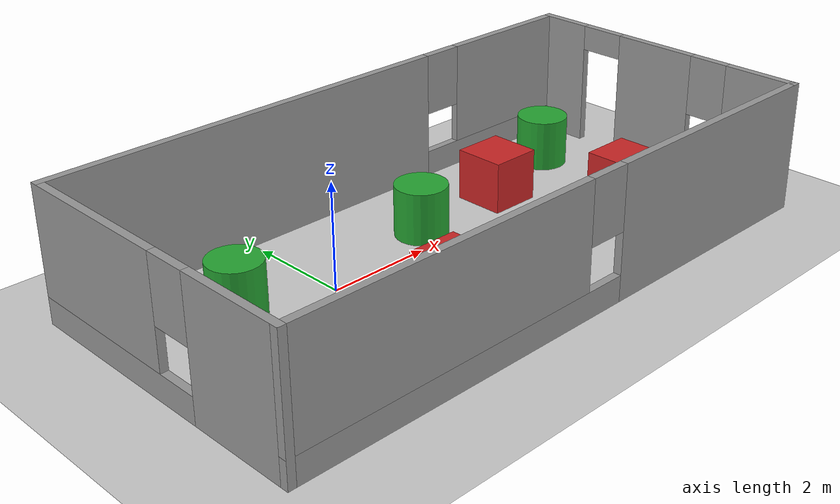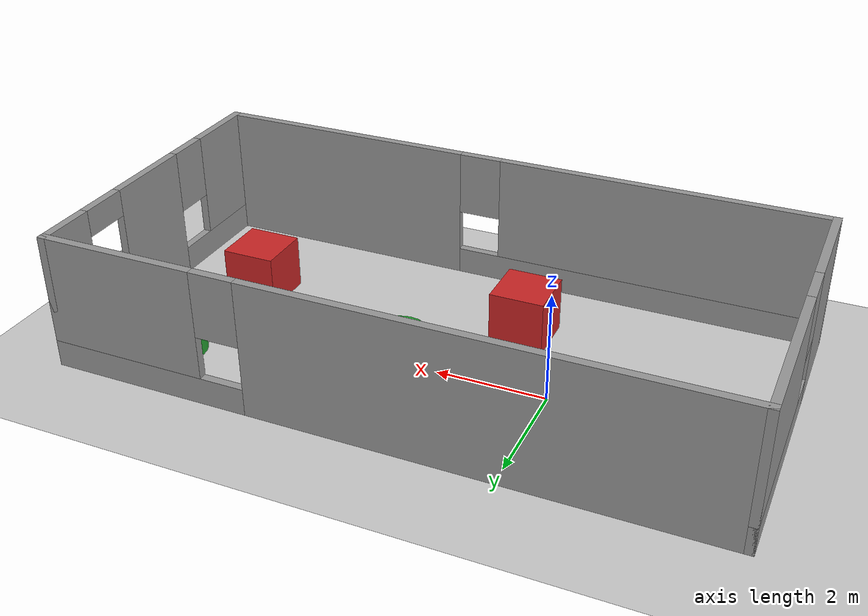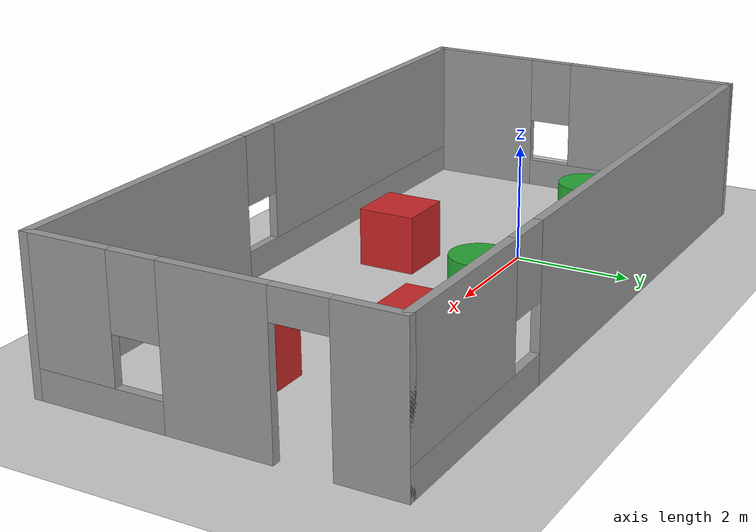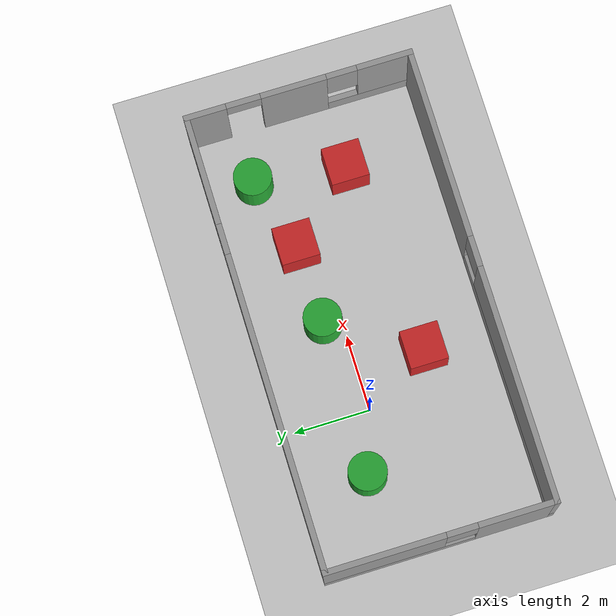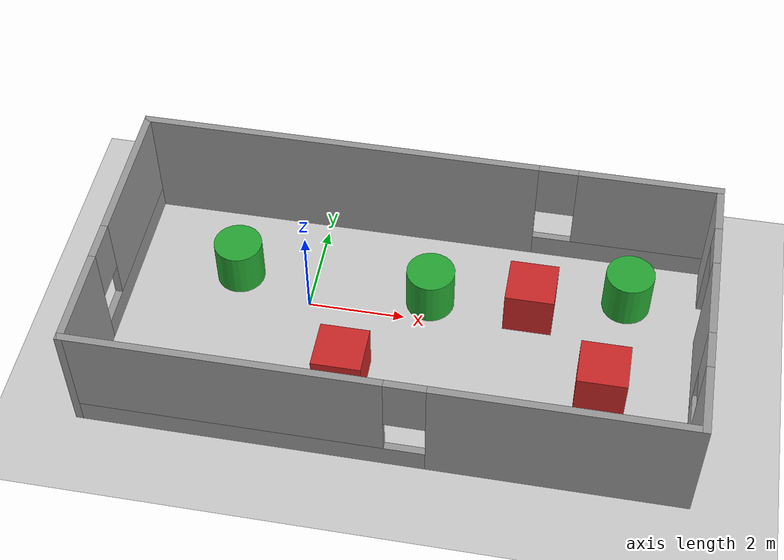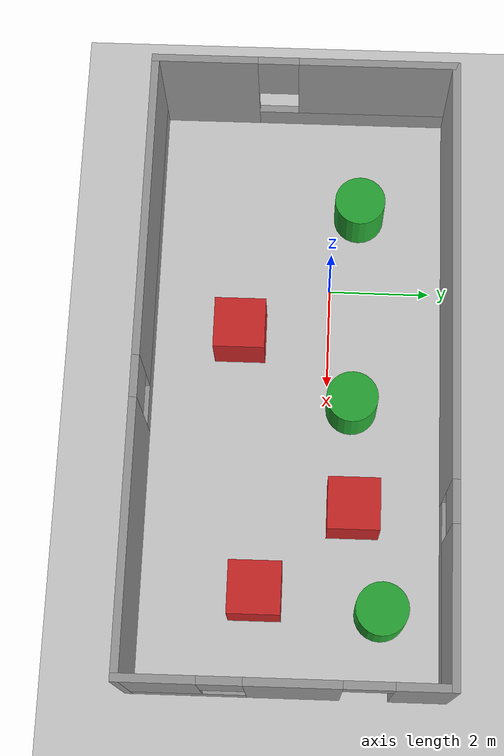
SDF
<sdf version="1.7">
 <world name="__default__">
  <model name="ground_plane">
   <static>1</static>
   <link name="link">
    <collision name="collision">
     <geometry><plane><normal>0 0 1</normal><size>100 100</size></plane></geometry>
     <surface><friction><ode><mu>100</mu><mu2>50</mu2></ode></friction></surface>
    </collision>
    <visual name="visual">
     <cast_shadows>0</cast_shadows>
     <geometry><plane><normal>0 0 1</normal><size>100 100</size></plane></geometry>
     <material>
      <script><uri>file://media/materials/scripts/gazebo.material</uri><name>Gazebo/Grey</name></script>
     </material>
    </visual>
   </link>
  </model>
  <gravity>0 0 -9.8</gravity>
  <magnetic_field>6e-06 2.3e-05 -4.2e-05</magnetic_field>
  <atmosphere type="adiabatic"/>
  <physics type="ode">
   <max_step_size>0.001</max_step_size>
   <real_time_factor>1</real_time_factor>
   <real_time_update_rate>1000</real_time_update_rate>
  </physics>
  <scene><ambient>0.4 0.4 0.4 1</ambient><background>0.7 0.7 0.7 1</background><shadows>1</shadows></scene>
  <audio><device>default</device></audio>
  <spherical_coordinates>
   <surface_model>EARTH_WGS84</surface_model>
   <latitude_deg>0</latitude_deg>
   <longitude_deg>0</longitude_deg>
   <elevation>0</elevation>
   <heading_deg>0</heading_deg>
  </spherical_coordinates>
  <model name="demo">
   <pose>2.095 -0.605 0 0 -0 0</pose>
   <link name="Wall_1">
    <pose>-5.925 0 0 0 -0 1.5708</pose>
    <visual name="Wall_1_Visual_0">
     <pose>-1.9675 0 1.25 0 -0 0</pose>
     <geometry><box><size>2.065 0.15 2.5</size></box></geometry>
     <material>
      <script><uri>file://media/materials/scripts/gazebo.material</uri><name>Gazebo/Grey</name></script>
      <ambient>1 1 1 1</ambient>
     </material>
     <meta><layer>0</layer></meta>
    </visual>
    <collision name="Wall_1_Collision_0">
     <geometry><box><size>2.065 0.15 2.5</size></box></geometry>
     <pose>-1.9675 0 1.25 0 -0 0</pose>
    </collision>
    <visual name="Wall_1_Visual_1">
     <pose>1.0325 0 0.25 0 -0 0</pose>
     <geometry><box><size>3.935 0.15 0.5</size></box></geometry>
     <material>
      <script><uri>file://media/materials/scripts/gazebo.material</uri><name>Gazebo/Grey</name></script>
      <ambient>1 1 1 1</ambient>
     </material>
     <meta><layer>0</layer></meta>
    </visual>
    <collision name="Wall_1_Collision_1">
     <geometry><box><size>3.935 0.15 0.5</size></box></geometry>
     <pose>1.0325 0 0.25 0 -0 0</pose>
    </collision>
    <visual name="Wall_1_Visual_2">
     <pose>1.4325 0 1.5 0 -0 0</pose>
     <geometry><box><size>3.135 0.15 2</size></box></geometry>
     <material>
      <script><uri>file://media/materials/scripts/gazebo.material</uri><name>Gazebo/Grey</name></script>
      <ambient>1 1 1 1</ambient>
     </material>
     <meta><layer>0</layer></meta>
    </visual>
    <collision name="Wall_1_Collision_2">
     <geometry><box><size>3.135 0.15 2</size></box></geometry>
     <pose>1.4325 0 1.5 0 -0 0</pose>
    </collision>
    <visual name="Wall_1_Visual_3">
     <pose>-0.535 0 1.9 0 -0 0</pose>
     <geometry><box><size>0.8 0.15 1.2</size></box></geometry>
     <material>
      <script><uri>file://media/materials/scripts/gazebo.material</uri><name>Gazebo/Grey</name></script>
      <ambient>1 1 1 1</ambient>
     </material>
     <meta><layer>0</layer></meta>
    </visual>
    <collision name="Wall_1_Collision_3">
     <geometry><box><size>0.8 0.15 1.2</size></box></geometry>
     <pose>-0.535 0 1.9 0 -0 0</pose>
    </collision>
   </link>
   <link name="Wall_2">
    <pose>-0 2.925 0 0 -0 0</pose>
    <visual name="Wall_2_Visual_0">
     <pose>-1.8625 0 1.25 0 -0 0</pose>
     <geometry><box><size>8.275 0.15 2.5</size></box></geometry>
     <material>
      <script><uri>file://media/materials/scripts/gazebo.material</uri><name>Gazebo/Grey</name></script>
      <ambient>1 1 1 1</ambient>
     </material>
     <meta><layer>0</layer></meta>
    </visual>
    <collision name="Wall_2_Collision_0">
     <geometry><box><size>8.275 0.15 2.5</size></box></geometry>
     <pose>-1.8625 0 1.25 0 -0 0</pose>
    </collision>
    <visual name="Wall_2_Visual_1">
     <pose>4.1375 0 0.25 0 -0 0</pose>
     <geometry><box><size>3.725 0.15 0.5</size></box></geometry>
     <material>
      <script><uri>file://media/materials/scripts/gazebo.material</uri><name>Gazebo/Grey</name></script>
      <ambient>1 1 1 1</ambient>
     </material>
     <meta><layer>0</layer></meta>
    </visual>
    <collision name="Wall_2_Collision_1">
     <geometry><box><size>3.725 0.15 0.5</size></box></geometry>
     <pose>4.1375 0 0.25 0 -0 0</pose>
    </collision>
    <visual name="Wall_2_Visual_2">
     <pose>4.5375 0 1.5 0 -0 0</pose>
     <geometry><box><size>2.925 0.15 2</size></box></geometry>
     <material>
      <script><uri>file://media/materials/scripts/gazebo.material</uri><name>Gazebo/Grey</name></script>
      <ambient>1 1 1 1</ambient>
     </material>
     <meta><layer>0</layer></meta>
    </visual>
    <collision name="Wall_2_Collision_2">
     <geometry><box><size>2.925 0.15 2</size></box></geometry>
     <pose>4.5375 0 1.5 0 -0 0</pose>
    </collision>
    <visual name="Wall_2_Visual_3">
     <pose>2.675 0 1.9 0 -0 0</pose>
     <geometry><box><size>0.8 0.15 1.2</size></box></geometry>
     <material>
      <script><uri>file://media/materials/scripts/gazebo.material</uri><name>Gazebo/Grey</name></script>
      <ambient>1 1 1 1</ambient>
     </material>
     <meta><layer>0</layer></meta>
    </visual>
    <collision name="Wall_2_Collision_3">
     <geometry><box><size>0.8 0.15 1.2</size></box></geometry>
     <pose>2.675 0 1.9 0 -0 0</pose>
    </collision>
   </link>
   <link name="Wall_3">
    <pose>5.925 0 0 0 -0 -1.5708</pose>
    <visual name="Wall_3_Visual_0">
     <pose>-2.4475 0 1.25 0 -0 0</pose>
     <geometry><box><size>1.105 0.15 2.5</size></box></geometry>
     <material>
      <script><uri>file://media/materials/scripts/gazebo.material</uri><name>Gazebo/Grey</name></script>
      <ambient>1 1 1 1</ambient>
     </material>
     <meta><layer>0</layer></meta>
    </visual>
    <collision name="Wall_3_Collision_0">
     <geometry><box><size>1.105 0.15 2.5</size></box></geometry>
     <pose>-2.4475 0 1.25 0 -0 0</pose>
    </collision>
    <visual name="Wall_3_Visual_1">
     <pose>-0.135 0 1.25 0 -0 0</pose>
     <geometry><box><size>1.72 0.15 2.5</size></box></geometry>
     <material>
      <script><uri>file://media/materials/scripts/gazebo.material</uri><name>Gazebo/Grey</name></script>
      <ambient>1 1 1 1</ambient>
     </material>
     <meta><layer>0</layer></meta>
    </visual>
    <collision name="Wall_3_Collision_1">
     <geometry><box><size>1.72 0.15 2.5</size></box></geometry>
     <pose>-0.135 0 1.25 0 -0 0</pose>
    </collision>
    <visual name="Wall_3_Visual_2">
     <pose>1.8625 0 0.25 0 -0 0</pose>
     <geometry><box><size>2.275 0.15 0.5</size></box></geometry>
     <material>
      <script><uri>file://media/materials/scripts/gazebo.material</uri><name>Gazebo/Grey</name></script>
      <ambient>1 1 1 1</ambient>
     </material>
     <meta><layer>0</layer></meta>
    </visual>
    <collision name="Wall_3_Collision_2">
     <geometry><box><size>2.275 0.15 0.5</size></box></geometry>
     <pose>1.8625 0 0.25 0 -0 0</pose>
    </collision>
    <visual name="Wall_3_Visual_3">
     <pose>2.2625 0 1.5 0 -0 0</pose>
     <geometry><box><size>1.475 0.15 2</size></box></geometry>
     <material>
      <script><uri>file://media/materials/scripts/gazebo.material</uri><name>Gazebo/Grey</name></script>
      <ambient>1 1 1 1</ambient>
     </material>
     <meta><layer>0</layer></meta>
    </visual>
    <collision name="Wall_3_Collision_3">
     <geometry><box><size>1.475 0.15 2</size></box></geometry>
     <pose>2.2625 0 1.5 0 -0 0</pose>
    </collision>
    <visual name="Wall_3_Visual_4">
     <pose>1.125 0 1.9 0 -0 0</pose>
     <geometry><box><size>0.8 0.15 1.2</size></box></geometry>
     <material>
      <script><uri>file://media/materials/scripts/gazebo.material</uri><name>Gazebo/Grey</name></script>
      <ambient>1 1 1 1</ambient>
     </material>
     <meta><layer>0</layer></meta>
    </visual>
    <collision name="Wall_3_Collision_4">
     <geometry><box><size>0.8 0.15 1.2</size></box></geometry>
     <pose>1.125 0 1.9 0 -0 0</pose>
    </collision>
    <visual name="Wall_3_Visual_5">
     <pose>-1.445 0 2.25 0 -0 0</pose>
     <geometry><box><size>0.9 0.15 0.5</size></box></geometry>
     <material>
      <script><uri>file://media/materials/scripts/gazebo.material</uri><name>Gazebo/Grey</name></script>
      <ambient>1 1 1 1</ambient>
     </material>
     <meta><layer>0</layer></meta>
    </visual>
    <collision name="Wall_3_Collision_5">
     <geometry><box><size>0.9 0.15 0.5</size></box></geometry>
     <pose>-1.445 0 2.25 0 -0 0</pose>
    </collision>
   </link>
   <link name="Wall_4">
    <pose>-0 -2.925 0 0 -0 3.14159</pose>
    <visual name="Wall_4_Visual_0">
     <pose>-3.4725 0 1.25 0 -0 0</pose>
     <geometry><box><size>5.055 0.15 2.5</size></box></geometry>
     <material>
      <script><uri>file://media/materials/scripts/gazebo.material</uri><name>Gazebo/Grey</name></script>
      <ambient>1 1 1 1</ambient>
     </material>
     <meta><layer>0</layer></meta>
    </visual>
    <collision name="Wall_4_Collision_0">
     <geometry><box><size>5.055 0.15 2.5</size></box></geometry>
     <pose>-3.4725 0 1.25 0 -0 0</pose>
    </collision>
    <visual name="Wall_4_Visual_1">
     <pose>2.5275 0 0.25 0 -0 0</pose>
     <geometry><box><size>6.945 0.15 0.5</size></box></geometry>
     <material>
      <script><uri>file://media/materials/scripts/gazebo.material</uri><name>Gazebo/Grey</name></script>
      <ambient>1 1 1 1</ambient>
     </material>
     <meta><layer>0</layer></meta>
    </visual>
    <collision name="Wall_4_Collision_1">
     <geometry><box><size>6.945 0.15 0.5</size></box></geometry>
     <pose>2.5275 0 0.25 0 -0 0</pose>
    </collision>
    <visual name="Wall_4_Visual_2">
     <pose>2.9275 0 1.5 0 -0 0</pose>
     <geometry><box><size>6.145 0.15 2</size></box></geometry>
     <material>
      <script><uri>file://media/materials/scripts/gazebo.material</uri><name>Gazebo/Grey</name></script>
      <ambient>1 1 1 1</ambient>
     </material>
     <meta><layer>0</layer></meta>
    </visual>
    <collision name="Wall_4_Collision_2">
     <geometry><box><size>6.145 0.15 2</size></box></geometry>
     <pose>2.9275 0 1.5 0 -0 0</pose>
    </collision>
    <visual name="Wall_4_Visual_3">
     <pose>-0.545 0 1.9 0 -0 0</pose>
     <geometry><box><size>0.8 0.15 1.2</size></box></geometry>
     <material>
      <script><uri>file://media/materials/scripts/gazebo.material</uri><name>Gazebo/Grey</name></script>
      <ambient>1 1 1 1</ambient>
     </material>
     <meta><layer>0</layer></meta>
    </visual>
    <collision name="Wall_4_Collision_3">
     <geometry><box><size>0.8 0.15 1.2</size></box></geometry>
     <pose>-0.545 0 1.9 0 -0 0</pose>
    </collision>
   </link>
   <static>1</static>
  </model>
  <model name="unit_cylinder_0">
   <pose>2.47045 0.488982 0.499998 3e-06 -4e-06 0</pose>
   <link name="link">
    <inertial>
     <mass>1</mass>
     <inertia><ixx>0.145833</ixx><ixy>0</ixy><ixz>0</ixz><iyy>0.145833</iyy><iyz>0</iyz><izz>0.125</izz></inertia>
    </inertial>
    <collision name="collision">
     <geometry><cylinder><radius>0.5</radius><length>1</length></cylinder></geometry>
    </collision>
    <visual name="visual">
     <geometry><cylinder><radius>0.5</radius><length>1</length></cylinder></geometry>
     <material>
      <script><name>Gazebo/Green</name><uri>file://media/materials/scripts/gazebo.material</uri></script>
     </material>
    </visual>
   </link>
  </model>
  <model name="unit_box">
   <pose>6.17649 -1.24934 0.499995 -1e-05 0 0</pose>
   <link name="link">
    <inertial>
     <mass>1</mass>
     <inertia>
      <ixx>0.166667</ixx>
      <ixy>0</ixy>
      <ixz>0</ixz>
      <iyy>0.166667</iyy>
      <iyz>0</iyz>
      <izz>0.166667</izz>
     </inertia>
    </inertial>
    <collision name="collision"><geometry><box><size>1 1 1</size></box></geometry></collision>
    <visual name="visual">
     <geometry><box><size>1 1 1</size></box></geometry>
     <material>
      <script><name>Gazebo/Red</name><uri>file://media/materials/scripts/gazebo.material</uri></script>
     </material>
    </visual>
   </link>
  </model>
  <model name="unit_box_0">
   <pose>4.54392 0.562163 0.499995 0 1e-05 0</pose>
   <link name="link">
    <inertial>
     <mass>1</mass>
     <inertia>
      <ixx>0.166667</ixx>
      <ixy>0</ixy>
      <ixz>0</ixz>
      <iyy>0.166667</iyy>
      <iyz>0</iyz>
      <izz>0.166667</izz>
     </inertia>
    </inertial>
    <collision name="collision"><geometry><box><size>1 1 1</size></box></geometry></collision>
    <visual name="visual">
     <geometry><box><size>1 1 1</size></box></geometry>
     <material>
      <script><name>Gazebo/Red</name><uri>file://media/materials/scripts/gazebo.material</uri></script>
     </material>
    </visual>
   </link>
  </model>
  <model name="unit_cylinder_1">
   <pose>6.49696 1.12403 0.499997 3e-06 3e-06 0</pose>
   <link name="link">
    <inertial>
     <mass>1</mass>
     <inertia><ixx>0.145833</ixx><ixy>0</ixy><ixz>0</ixz><iyy>0.145833</iyy><iyz>0</iyz><izz>0.125</izz></inertia>
    </inertial>
    <collision name="collision">
     <geometry><cylinder><radius>0.5</radius><length>1</length></cylinder></geometry>
    </collision>
    <visual name="visual">
     <geometry><cylinder><radius>0.5</radius><length>1</length></cylinder></geometry>
     <material>
      <script><name>Gazebo/Green</name><uri>file://media/materials/scripts/gazebo.material</uri></script>
     </material>
    </visual>
   </link>
  </model>
  <model name="unit_box_1">
   <pose>1.04096 -1.74077 0.499995 0 1e-05 0</pose>
   <link name="link">
    <inertial>
     <mass>1</mass>
     <inertia>
      <ixx>0.166667</ixx>
      <ixy>0</ixy>
      <ixz>0</ixz>
      <iyy>0.166667</iyy>
      <iyz>0</iyz>
      <izz>0.166667</izz>
     </inertia>
    </inertial>
    <collision name="collision"><geometry><box><size>1 1 1</size></box></geometry></collision>
    <visual name="visual">
     <geometry><box><size>1 1 1</size></box></geometry>
     <material>
      <script><name>Gazebo/Red</name><uri>file://media/materials/scripts/gazebo.material</uri></script>
     </material>
    </visual>
   </link>
  </model>
  <model name="unit_cylinder">
   <pose>-1.59628 0.557304 0.499997 3e-06 4e-06 -0</pose>
   <link name="link">
    <inertial>
     <mass>1</mass>
     <inertia><ixx>0.145833</ixx><ixy>0</ixy><ixz>0</ixz><iyy>0.145833</iyy><iyz>0</iyz><izz>0.125</izz></inertia>
    </inertial>
    <collision name="collision">
     <geometry><cylinder><radius>0.5</radius><length>1</length></cylinder></geometry>
    </collision>
    <visual name="visual">
     <geometry><cylinder><radius>0.5</radius><length>1</length></cylinder></geometry>
     <material>
      <script><name>Gazebo/Green</name><uri>file://media/materials/scripts/gazebo.material</uri></script>
     </material>
    </visual>
   </link>
  </model>
 </world>
</sdf>
